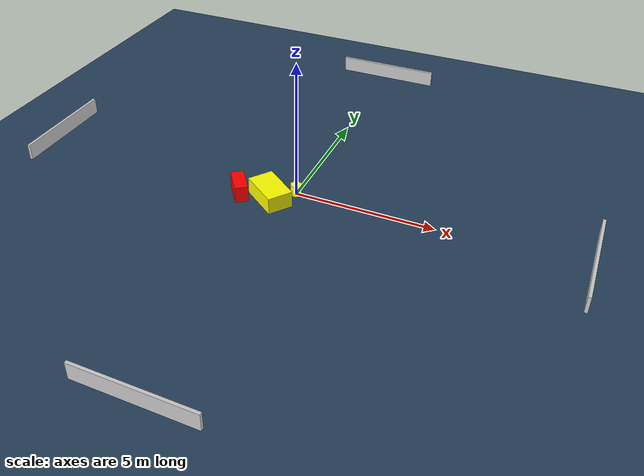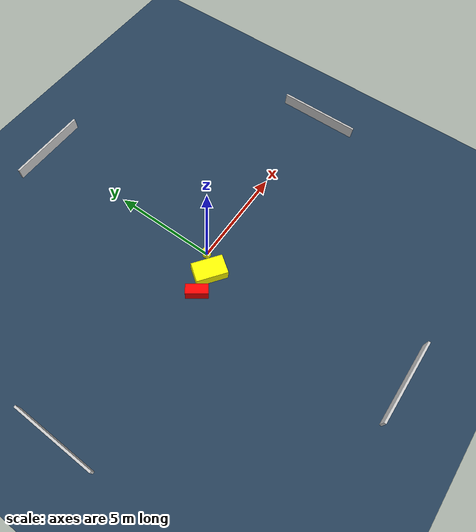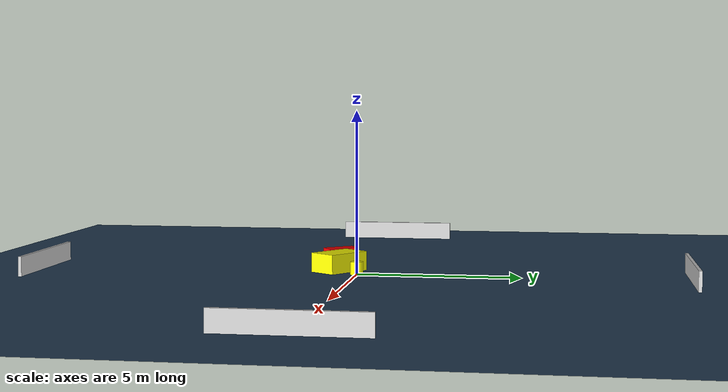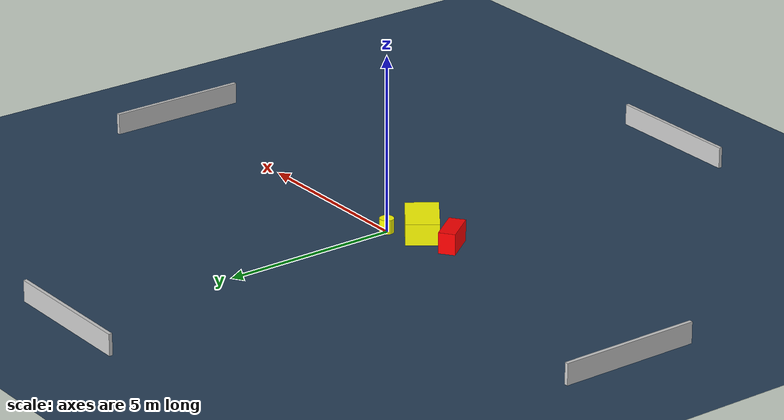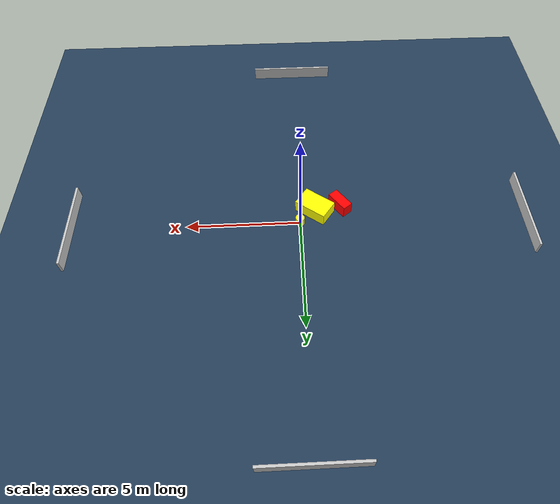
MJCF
<?xml version="1.0" ?>
<mujoco model="generated_environment">
  <option timestep="0.01" integrator="RK4" cone="elliptic"/>
  <default>
    <geom density="1"/>
  </default>
  <asset>
    <texture builtin="gradient" height="3072" name="skybox" rgb1="0.3 0.5 0.7" rgb2="0 0 0" type="skybox" width="512"/>
    <texture builtin="checker" height="300" name="groundplane" rgb1="0.2 0.3 0.4" rgb2="0.1 0.2 0.3" type="2d" width="300"/>
    <material name="groundplane" reflectance="0.2" texrepeat="5 5" texture="groundplane"/>
  </asset>
  <worldbody>
    <light dir="0 0 -1" directional="true" pos="0 0 1.5"/>
    <geom condim="3" friction="0.5 0.005 0.001" material="groundplane" name="floor" pos="0 0 0" size="0 0 0.05" type="plane"/>
    <body name="walls">
      <geom name="wall_1" condim="4" pos="-10.0 0.0 0.3" rgba="0.800000011920929 0.800000011920929 0.800000011920929 1.0" size="0.05 2.0 0.3" type="box"/>
      <geom name="wall_2" condim="4" pos="10.0 0.0 0.3" rgba="0.800000011920929 0.800000011920929 0.800000011920929 1.0" size="0.05 2.0 0.3" type="box"/>
      <geom name="wall_3" condim="4" pos="0.0 -10.0 0.3" rgba="0.800000011920929 0.800000011920929 0.800000011920929 1.0" size="2.0 0.05 0.3" type="box"/>
      <geom name="wall_4" condim="4" pos="0.0 10.0 0.3" rgba="0.800000011920929 0.800000011920929 0.800000011920929 1.0" size="2.0 0.05 0.3" type="box"/>
    </body>
    <body name="robot">
      <joint name="joint_x" type="slide" pos="0 0 0" axis="1 0 0"/>
      <joint name="joint_y" type="slide" pos="0 0 0" axis="0 1 0"/>
      <geom name="robot" type="cylinder" pos="0.0 0.0 0.2" size="0.2 0.2 0.0" mass="5.0" friction="1.0 0.005 0.0001" condim="4" rgba="1.0 1.0 0.0 1.0"/>
    </body>
    <body name="obstacle_1_movable">
      <geom name="obstacle_1_movable" condim="4" pos="-0.6876915146240397 -0.6590204394784385 0.3" euler="0 0 233.78962810364467" friction="0.0 0.005 0.001" rgba="1.0 1.0 0.0 1.0" size="0.4606542300428653 0.7407999173578299 0.3" type="box" mass="0.1"/>
      <joint type="free"/>
    </body>
    <body name="obstacle_2_static">
      <geom name="obstacle_2_static" condim="4" pos="-1.8174906405060018 -0.7904622416111414 0.3" euler="0 0 306.4580786754701" friction="0.0 0.005 0.001" rgba="1.0 0.0 0.0 1.0" size="0.5136275432325104 0.23269641663624654 0.3" type="box"/>
    </body>
  </worldbody>
  <actuator>
    <motor name="actuator_x" joint="joint_x" gear="1" ctrlrange="-1 1"/>
    <motor name="actuator_y" joint="joint_y" gear="1" ctrlrange="-1 1"/>
  </actuator>
</mujoco>
